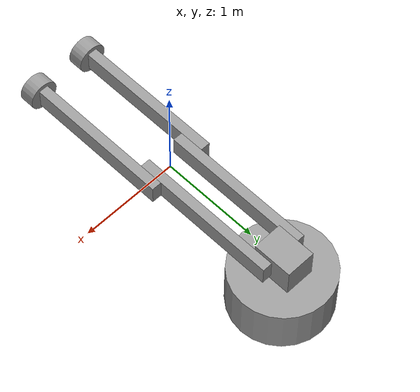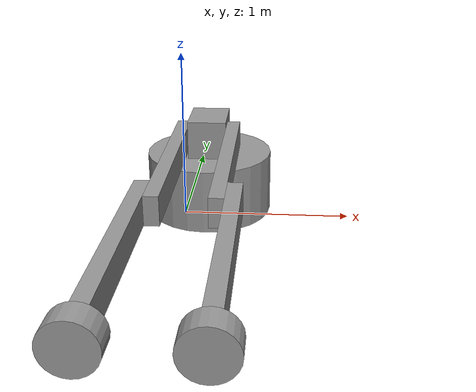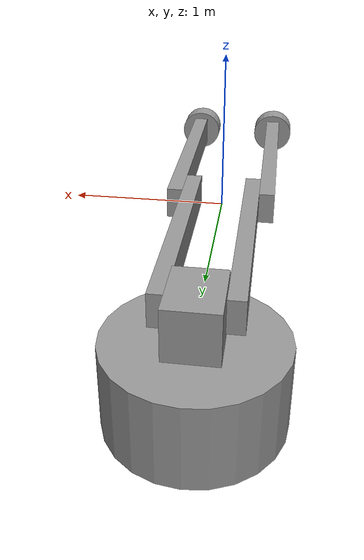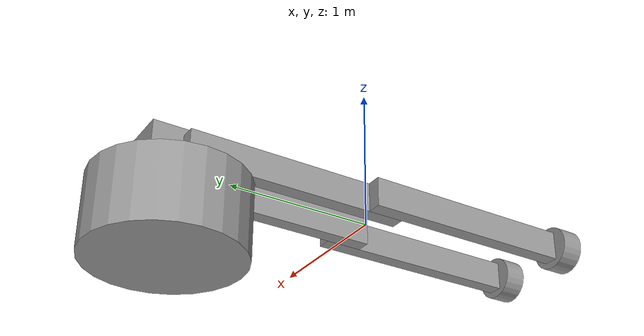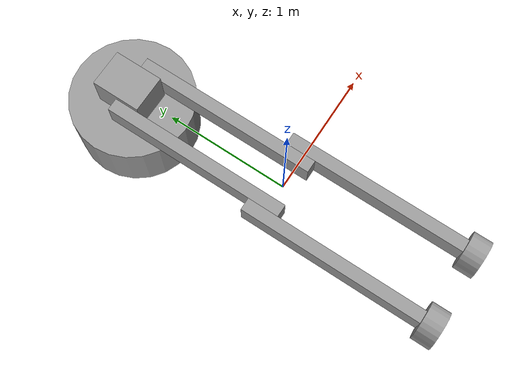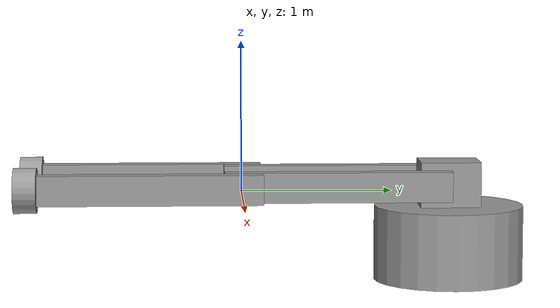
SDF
<?xml version='1.0'?>
<sdf version='1.6'>
  <model name='simple_arm_bot'>
    <link name='link_0'>
      <pose frame=''>0 1.3875 -0.35 0 -0 0</pose>
      <inertial>
        <mass>1</mass>
        <inertia>
          <ixx>0.145833</ixx>
          <ixy>0</ixy>
          <ixz>0</ixz>
          <iyy>0.145833</iyy>
          <iyz>0</iyz>
          <izz>0.125</izz>
        </inertia>
        <pose frame=''>0 0 0 0 -0 0</pose>
      </inertial>
      <gravity>1</gravity>
      <self_collide>0</self_collide>
      <kinematic>0</kinematic>
      <visual name='visual'>
        <pose frame=''>0 0 0 0 -0 0</pose>
        <geometry>
          <cylinder>
            <radius>0.5</radius>
            <length>0.5</length>
          </cylinder>
        </geometry>
        <material>
          <lighting>1</lighting>
          <script>
            <uri>file://media/materials/scripts/gazebo.material</uri>
            <name>Gazebo/Grey</name>
          </script>
          <ambient>0.3 0.3 0.3 1</ambient>
          <diffuse>0.7 0.7 0.7 1</diffuse>
          <specular>0.01 0.01 0.01 1</specular>
          <emissive>0 0 0 1</emissive>
          <shader type='vertex'>
            <normal_map>__default__</normal_map>
          </shader>
        </material>
        <transparency>0</transparency>
        <cast_shadows>1</cast_shadows>
      </visual>
      <collision name='collision'>
        <laser_retro>0</laser_retro>
        <max_contacts>10</max_contacts>
        <pose frame=''>0 0 0 0 -0 0</pose>
        <geometry>
          <cylinder>
            <radius>0.5</radius>
            <length>0.5</length>
          </cylinder>
        </geometry>
        <surface>
          <friction>
            <ode>
              <mu>1</mu>
              <mu2>1</mu2>
              <fdir1>0 0 0</fdir1>
              <slip1>0</slip1>
              <slip2>0</slip2>
            </ode>
            <torsional>
              <coefficient>1</coefficient>
              <patch_radius>0</patch_radius>
              <surface_radius>0</surface_radius>
              <use_patch_radius>1</use_patch_radius>
              <ode>
                <slip>0</slip>
              </ode>
            </torsional>
          </friction>
          <bounce>
            <restitution_coefficient>0</restitution_coefficient>
            <threshold>1e+06</threshold>
          </bounce>
          <contact>
            <collide_without_contact>0</collide_without_contact>
            <collide_without_contact_bitmask>1</collide_without_contact_bitmask>
            <collide_bitmask>1</collide_bitmask>
            <ode>
              <soft_cfm>0</soft_cfm>
              <soft_erp>0.2</soft_erp>
              <kp>1e+13</kp>
              <kd>1</kd>
              <max_vel>0.01</max_vel>
              <min_depth>0</min_depth>
            </ode>
            <bullet>
              <split_impulse>1</split_impulse>
              <split_impulse_penetration_threshold>-0.01</split_impulse_penetration_threshold>
              <soft_cfm>0</soft_cfm>
              <soft_erp>0.2</soft_erp>
              <kp>1e+13</kp>
              <kd>1</kd>
            </bullet>
          </contact>
        </surface>
      </collision>
    </link>
    <link name='link_1'>
      <pose frame=''>0 1.3875 0.05 0 -0 0</pose>
      <inertial>
        <mass>0.1</mass>
        <inertia>
          <ixx>0.166667</ixx>
          <ixy>0</ixy>
          <ixz>0</ixz>
          <iyy>0.166667</iyy>
          <iyz>0</iyz>
          <izz>0.166667</izz>
        </inertia>
        <pose frame=''>0 0 0 0 -0 0</pose>
      </inertial>
      <gravity>1</gravity>
      <self_collide>0</self_collide>
      <kinematic>0</kinematic>
      <visual name='visual'>
        <pose frame=''>0 0 0 0 -0 0</pose>
        <geometry>
          <box>
            <size>0.3 0.4 0.3</size>
          </box>
        </geometry>
        <material>
          <lighting>1</lighting>
          <script>
            <uri>file://media/materials/scripts/gazebo.material</uri>
            <name>Gazebo/Grey</name>
          </script>
          <ambient>0.3 0.3 0.3 1</ambient>
          <diffuse>0.7 0.7 0.7 1</diffuse>
          <specular>0.01 0.01 0.01 1</specular>
          <emissive>0 0 0 1</emissive>
          <shader type='vertex'>
            <normal_map>__default__</normal_map>
          </shader>
        </material>
        <transparency>0</transparency>
        <cast_shadows>1</cast_shadows>
      </visual>
      <collision name='collision'>
        <laser_retro>0</laser_retro>
        <max_contacts>10</max_contacts>
        <pose frame=''>0 0 0 0 -0 0</pose>
        <geometry>
          <box>
            <size>0.3 0.4 0.3</size>
          </box>
        </geometry>
        <surface>
          <friction>
            <ode>
              <mu>1</mu>
              <mu2>1</mu2>
              <fdir1>0 0 0</fdir1>
              <slip1>0</slip1>
              <slip2>0</slip2>
            </ode>
            <torsional>
              <coefficient>1</coefficient>
              <patch_radius>0</patch_radius>
              <surface_radius>0</surface_radius>
              <use_patch_radius>1</use_patch_radius>
              <ode>
                <slip>0</slip>
              </ode>
            </torsional>
          </friction>
          <bounce>
            <restitution_coefficient>0</restitution_coefficient>
            <threshold>1e+06</threshold>
          </bounce>
          <contact>
            <collide_without_contact>0</collide_without_contact>
            <collide_without_contact_bitmask>1</collide_without_contact_bitmask>
            <collide_bitmask>1</collide_bitmask>
            <ode>
              <soft_cfm>0</soft_cfm>
              <soft_erp>0.2</soft_erp>
              <kp>1e+13</kp>
              <kd>1</kd>
              <max_vel>0.01</max_vel>
              <min_depth>0</min_depth>
            </ode>
            <bullet>
              <split_impulse>1</split_impulse>
              <split_impulse_penetration_threshold>-0.01</split_impulse_penetration_threshold>
              <soft_cfm>0</soft_cfm>
              <soft_erp>0.2</soft_erp>
              <kp>1e+13</kp>
              <kd>1</kd>
            </bullet>
          </contact>
        </surface>
      </collision>
    </link>
    <link name='link_2'>
      <pose frame=''>0.2 0.6375 0.05 0 -0 0</pose>
      <inertial>
        <mass>0.1</mass>
        <inertia>
          <ixx>0.166667</ixx>
          <ixy>0</ixy>
          <ixz>0</ixz>
          <iyy>0.166667</iyy>
          <iyz>0</iyz>
          <izz>0.166667</izz>
        </inertia>
        <pose frame=''>0 0 0 0 -0 0</pose>
      </inertial>
      <gravity>1</gravity>
      <self_collide>0</self_collide>
      <kinematic>0</kinematic>
      <visual name='visual'>
        <pose frame=''>0 0 0 0 -0 0</pose>
        <geometry>
          <box>
            <size>0.1 1.5 0.2</size>
          </box>
        </geometry>
        <material>
          <lighting>1</lighting>
          <script>
            <uri>file://media/materials/scripts/gazebo.material</uri>
            <name>Gazebo/Grey</name>
          </script>
          <ambient>0.3 0.3 0.3 1</ambient>
          <diffuse>0.7 0.7 0.7 1</diffuse>
          <specular>0.01 0.01 0.01 1</specular>
          <emissive>0 0 0 1</emissive>
          <shader type='vertex'>
            <normal_map>__default__</normal_map>
          </shader>
        </material>
        <transparency>0</transparency>
        <cast_shadows>1</cast_shadows>
      </visual>
      <collision name='collision'>
        <laser_retro>0</laser_retro>
        <max_contacts>10</max_contacts>
        <pose frame=''>0 0 0 0 -0 0</pose>
        <geometry>
          <box>
            <size>0.1 1.5 0.2</size>
          </box>
        </geometry>
        <surface>
          <friction>
            <ode>
              <mu>1</mu>
              <mu2>1</mu2>
              <fdir1>0 0 0</fdir1>
              <slip1>0</slip1>
              <slip2>0</slip2>
            </ode>
            <torsional>
              <coefficient>1</coefficient>
              <patch_radius>0</patch_radius>
              <surface_radius>0</surface_radius>
              <use_patch_radius>1</use_patch_radius>
              <ode>
                <slip>0</slip>
              </ode>
            </torsional>
          </friction>
          <bounce>
            <restitution_coefficient>0</restitution_coefficient>
            <threshold>1e+06</threshold>
          </bounce>
          <contact>
            <collide_without_contact>0</collide_without_contact>
            <collide_without_contact_bitmask>1</collide_without_contact_bitmask>
            <collide_bitmask>1</collide_bitmask>
            <ode>
              <soft_cfm>0</soft_cfm>
              <soft_erp>0.2</soft_erp>
              <kp>1e+13</kp>
              <kd>1</kd>
              <max_vel>0.01</max_vel>
              <min_depth>0</min_depth>
            </ode>
            <bullet>
              <split_impulse>1</split_impulse>
              <split_impulse_penetration_threshold>-0.01</split_impulse_penetration_threshold>
              <soft_cfm>0</soft_cfm>
              <soft_erp>0.2</soft_erp>
              <kp>1e+13</kp>
              <kd>1</kd>
            </bullet>
          </contact>
        </surface>
      </collision>
    </link>
    <link name='link_3'>
      <pose frame=''>-0.2 0.6375 0.05 0 -0 0</pose>
      <inertial>
        <mass>0.1</mass>
        <inertia>
          <ixx>0.166667</ixx>
          <ixy>0</ixy>
          <ixz>0</ixz>
          <iyy>0.166667</iyy>
          <iyz>0</iyz>
          <izz>0.166667</izz>
        </inertia>
        <pose frame=''>0 0 0 0 -0 0</pose>
      </inertial>
      <gravity>1</gravity>
      <self_collide>0</self_collide>
      <kinematic>0</kinematic>
      <visual name='visual'>
        <pose frame=''>0 0 0 0 -0 0</pose>
        <geometry>
          <box>
            <size>0.1 1.5 0.2</size>
          </box>
        </geometry>
        <material>
          <lighting>1</lighting>
          <script>
            <uri>file://media/materials/scripts/gazebo.material</uri>
            <name>Gazebo/Grey</name>
          </script>
          <ambient>0.3 0.3 0.3 1</ambient>
          <diffuse>0.7 0.7 0.7 1</diffuse>
          <specular>0.01 0.01 0.01 1</specular>
          <emissive>0 0 0 1</emissive>
          <shader type='vertex'>
            <normal_map>__default__</normal_map>
          </shader>
        </material>
        <transparency>0</transparency>
        <cast_shadows>1</cast_shadows>
      </visual>
      <collision name='collision'>
        <laser_retro>0</laser_retro>
        <max_contacts>10</max_contacts>
        <pose frame=''>0 0 0 0 -0 0</pose>
        <geometry>
          <box>
            <size>0.1 1.5 0.2</size>
          </box>
        </geometry>
        <surface>
          <friction>
            <ode>
              <mu>1</mu>
              <mu2>1</mu2>
              <fdir1>0 0 0</fdir1>
              <slip1>0</slip1>
              <slip2>0</slip2>
            </ode>
            <torsional>
              <coefficient>1</coefficient>
              <patch_radius>0</patch_radius>
              <surface_radius>0</surface_radius>
              <use_patch_radius>1</use_patch_radius>
              <ode>
                <slip>0</slip>
              </ode>
            </torsional>
          </friction>
          <bounce>
            <restitution_coefficient>0</restitution_coefficient>
            <threshold>1e+06</threshold>
          </bounce>
          <contact>
            <collide_without_contact>0</collide_without_contact>
            <collide_without_contact_bitmask>1</collide_without_contact_bitmask>
            <collide_bitmask>1</collide_bitmask>
            <ode>
              <soft_cfm>0</soft_cfm>
              <soft_erp>0.2</soft_erp>
              <kp>1e+13</kp>
              <kd>1</kd>
              <max_vel>0.01</max_vel>
              <min_depth>0</min_depth>
            </ode>
            <bullet>
              <split_impulse>1</split_impulse>
              <split_impulse_penetration_threshold>-0.01</split_impulse_penetration_threshold>
              <soft_cfm>0</soft_cfm>
              <soft_erp>0.2</soft_erp>
              <kp>1e+13</kp>
              <kd>1</kd>
            </bullet>
          </contact>
        </surface>
      </collision>
    </link>
    <link name='link_4'>
      <pose frame=''>0.3 -0.6125 0.05 0 -0 0</pose>
      <inertial>
        <mass>0.1</mass>
        <inertia>
          <ixx>0.166667</ixx>
          <ixy>0</ixy>
          <ixz>0</ixz>
          <iyy>0.166667</iyy>
          <iyz>0</iyz>
          <izz>0.166667</izz>
        </inertia>
        <pose frame=''>0 0 0 0 -0 0</pose>
      </inertial>
      <gravity>1</gravity>
      <self_collide>0</self_collide>
      <kinematic>0</kinematic>
      <visual name='visual'>
        <pose frame=''>0 0 0 0 -0 0</pose>
        <geometry>
          <box>
            <size>0.1 1.5 0.2</size>
          </box>
        </geometry>
        <material>
          <lighting>1</lighting>
          <script>
            <uri>file://media/materials/scripts/gazebo.material</uri>
            <name>Gazebo/Grey</name>
          </script>
          <ambient>0.3 0.3 0.3 1</ambient>
          <diffuse>0.7 0.7 0.7 1</diffuse>
          <specular>0.01 0.01 0.01 1</specular>
          <emissive>0 0 0 1</emissive>
          <shader type='vertex'>
            <normal_map>__default__</normal_map>
          </shader>
        </material>
        <transparency>0</transparency>
        <cast_shadows>1</cast_shadows>
      </visual>
      <collision name='collision'>
        <laser_retro>0</laser_retro>
        <max_contacts>10</max_contacts>
        <pose frame=''>0 0 0 0 -0 0</pose>
        <geometry>
          <box>
            <size>0.1 1.5 0.2</size>
          </box>
        </geometry>
        <surface>
          <friction>
            <ode>
              <mu>1</mu>
              <mu2>1</mu2>
              <fdir1>0 0 0</fdir1>
              <slip1>0</slip1>
              <slip2>0</slip2>
            </ode>
            <torsional>
              <coefficient>1</coefficient>
              <patch_radius>0</patch_radius>
              <surface_radius>0</surface_radius>
              <use_patch_radius>1</use_patch_radius>
              <ode>
                <slip>0</slip>
              </ode>
            </torsional>
          </friction>
          <bounce>
            <restitution_coefficient>0</restitution_coefficient>
            <threshold>1e+06</threshold>
          </bounce>
          <contact>
            <collide_without_contact>0</collide_without_contact>
            <collide_without_contact_bitmask>1</collide_without_contact_bitmask>
            <collide_bitmask>1</collide_bitmask>
            <ode>
              <soft_cfm>0</soft_cfm>
              <soft_erp>0.2</soft_erp>
              <kp>1e+13</kp>
              <kd>1</kd>
              <max_vel>0.01</max_vel>
              <min_depth>0</min_depth>
            </ode>
            <bullet>
              <split_impulse>1</split_impulse>
              <split_impulse_penetration_threshold>-0.01</split_impulse_penetration_threshold>
              <soft_cfm>0</soft_cfm>
              <soft_erp>0.2</soft_erp>
              <kp>1e+13</kp>
              <kd>1</kd>
            </bullet>
          </contact>
        </surface>
      </collision>
    </link>
    <link name='link_6'>
      <pose frame=''>-0.3 -0.6125 0.05 0 -0 0</pose>
      <inertial>
        <mass>0.1</mass>
        <inertia>
          <ixx>0.166667</ixx>
          <ixy>0</ixy>
          <ixz>0</ixz>
          <iyy>0.166667</iyy>
          <iyz>0</iyz>
          <izz>0.166667</izz>
        </inertia>
        <pose frame=''>0 0 0 0 -0 0</pose>
      </inertial>
      <gravity>1</gravity>
      <self_collide>0</self_collide>
      <kinematic>0</kinematic>
      <visual name='visual'>
        <pose frame=''>0 0 0 0 -0 0</pose>
        <geometry>
          <box>
            <size>0.1 1.5 0.2</size>
          </box>
        </geometry>
        <material>
          <lighting>1</lighting>
          <script>
            <uri>file://media/materials/scripts/gazebo.material</uri>
            <name>Gazebo/Grey</name>
          </script>
          <ambient>0.3 0.3 0.3 1</ambient>
          <diffuse>0.7 0.7 0.7 1</diffuse>
          <specular>0.01 0.01 0.01 1</specular>
          <emissive>0 0 0 1</emissive>
          <shader type='vertex'>
            <normal_map>__default__</normal_map>
          </shader>
        </material>
        <transparency>0</transparency>
        <cast_shadows>1</cast_shadows>
      </visual>
      <collision name='collision'>
        <laser_retro>0</laser_retro>
        <max_contacts>10</max_contacts>
        <pose frame=''>0 0 0 0 -0 0</pose>
        <geometry>
          <box>
            <size>0.1 1.5 0.2</size>
          </box>
        </geometry>
        <surface>
          <friction>
            <ode>
              <mu>1</mu>
              <mu2>1</mu2>
              <fdir1>0 0 0</fdir1>
              <slip1>0</slip1>
              <slip2>0</slip2>
            </ode>
            <torsional>
              <coefficient>1</coefficient>
              <patch_radius>0</patch_radius>
              <surface_radius>0</surface_radius>
              <use_patch_radius>1</use_patch_radius>
              <ode>
                <slip>0</slip>
              </ode>
            </torsional>
          </friction>
          <bounce>
            <restitution_coefficient>0</restitution_coefficient>
            <threshold>1e+06</threshold>
          </bounce>
          <contact>
            <collide_without_contact>0</collide_without_contact>
            <collide_without_contact_bitmask>1</collide_without_contact_bitmask>
            <collide_bitmask>1</collide_bitmask>
            <ode>
              <soft_cfm>0</soft_cfm>
              <soft_erp>0.2</soft_erp>
              <kp>1e+13</kp>
              <kd>1</kd>
              <max_vel>0.01</max_vel>
              <min_depth>0</min_depth>
            </ode>
            <bullet>
              <split_impulse>1</split_impulse>
              <split_impulse_penetration_threshold>-0.01</split_impulse_penetration_threshold>
              <soft_cfm>0</soft_cfm>
              <soft_erp>0.2</soft_erp>
              <kp>1e+13</kp>
              <kd>1</kd>
            </bullet>
          </contact>
        </surface>
      </collision>
    </link>
    <link name='link_7'>
      <pose frame=''>0.3 -1.4125 0.05 1.5708 -0 0</pose>
      <inertial>
        <mass>0.1</mass>
        <inertia>
          <ixx>0.145833</ixx>
          <ixy>0</ixy>
          <ixz>0</ixz>
          <iyy>0.145833</iyy>
          <iyz>0</iyz>
          <izz>0.125</izz>
        </inertia>
        <pose frame=''>0 0 0 0 -0 0</pose>
      </inertial>
      <gravity>1</gravity>
      <self_collide>0</self_collide>
      <kinematic>0</kinematic>
      <visual name='visual'>
        <pose frame=''>0 0 0 0 -0 0</pose>
        <geometry>
          <cylinder>
            <radius>0.15</radius>
            <length>0.15</length>
          </cylinder>
        </geometry>
        <material>
          <lighting>1</lighting>
          <script>
            <uri>file://media/materials/scripts/gazebo.material</uri>
            <name>Gazebo/Grey</name>
          </script>
          <ambient>0.3 0.3 0.3 1</ambient>
          <diffuse>0.7 0.7 0.7 1</diffuse>
          <specular>0.01 0.01 0.01 1</specular>
          <emissive>0 0 0 1</emissive>
          <shader type='vertex'>
            <normal_map>__default__</normal_map>
          </shader>
        </material>
        <transparency>0</transparency>
        <cast_shadows>1</cast_shadows>
      </visual>
      <collision name='collision'>
        <laser_retro>0</laser_retro>
        <max_contacts>10</max_contacts>
        <pose frame=''>0 0 0 0 -0 0</pose>
        <geometry>
          <cylinder>
            <radius>0.15</radius>
            <length>0.15</length>
          </cylinder>
        </geometry>
        <surface>
          <friction>
            <ode>
              <mu>1</mu>
              <mu2>1</mu2>
              <fdir1>0 0 0</fdir1>
              <slip1>0</slip1>
              <slip2>0</slip2>
            </ode>
            <torsional>
              <coefficient>1</coefficient>
              <patch_radius>0</patch_radius>
              <surface_radius>0</surface_radius>
              <use_patch_radius>1</use_patch_radius>
              <ode>
                <slip>0</slip>
              </ode>
            </torsional>
          </friction>
          <bounce>
            <restitution_coefficient>0</restitution_coefficient>
            <threshold>1e+06</threshold>
          </bounce>
          <contact>
            <collide_without_contact>0</collide_without_contact>
            <collide_without_contact_bitmask>1</collide_without_contact_bitmask>
            <collide_bitmask>1</collide_bitmask>
            <ode>
              <soft_cfm>0</soft_cfm>
              <soft_erp>0.2</soft_erp>
              <kp>1e+13</kp>
              <kd>1</kd>
              <max_vel>0.01</max_vel>
              <min_depth>0</min_depth>
            </ode>
            <bullet>
              <split_impulse>1</split_impulse>
              <split_impulse_penetration_threshold>-0.01</split_impulse_penetration_threshold>
              <soft_cfm>0</soft_cfm>
              <soft_erp>0.2</soft_erp>
              <kp>1e+13</kp>
              <kd>1</kd>
            </bullet>
          </contact>
        </surface>
      </collision>
    </link>
    <link name='link_8'>
      <pose frame=''>-0.3 -1.4125 0.05 1.57 -0 0</pose>
      <inertial>
        <mass>0.1</mass>
        <inertia>
          <ixx>0.145833</ixx>
          <ixy>0</ixy>
          <ixz>0</ixz>
          <iyy>0.145833</iyy>
          <iyz>0</iyz>
          <izz>0.125</izz>
        </inertia>
        <pose frame=''>0 0 0 0 -0 0</pose>
      </inertial>
      <gravity>1</gravity>
      <self_collide>0</self_collide>
      <kinematic>0</kinematic>
      <visual name='visual'>
        <pose frame=''>0 0 0 0 -0 0</pose>
        <geometry>
          <cylinder>
            <radius>0.15</radius>
            <length>0.15</length>
          </cylinder>
        </geometry>
        <material>
          <lighting>1</lighting>
          <script>
            <uri>file://media/materials/scripts/gazebo.material</uri>
            <name>Gazebo/Grey</name>
          </script>
          <ambient>0.3 0.3 0.3 1</ambient>
          <diffuse>0.7 0.7 0.7 1</diffuse>
          <specular>0.01 0.01 0.01 1</specular>
          <emissive>0 0 0 1</emissive>
          <shader type='vertex'>
            <normal_map>__default__</normal_map>
          </shader>
        </material>
        <transparency>0</transparency>
        <cast_shadows>1</cast_shadows>
      </visual>
      <collision name='collision'>
        <laser_retro>0</laser_retro>
        <max_contacts>10</max_contacts>
        <pose frame=''>0 0 0 0 -0 0</pose>
        <geometry>
          <cylinder>
            <radius>0.15</radius>
            <length>0.15</length>
          </cylinder>
        </geometry>
        <surface>
          <friction>
            <ode>
              <mu>1</mu>
              <mu2>1</mu2>
              <fdir1>0 0 0</fdir1>
              <slip1>0</slip1>
              <slip2>0</slip2>
            </ode>
            <torsional>
              <coefficient>1</coefficient>
              <patch_radius>0</patch_radius>
              <surface_radius>0</surface_radius>
              <use_patch_radius>1</use_patch_radius>
              <ode>
                <slip>0</slip>
              </ode>
            </torsional>
          </friction>
          <bounce>
            <restitution_coefficient>0</restitution_coefficient>
            <threshold>1e+06</threshold>
          </bounce>
          <contact>
            <collide_without_contact>0</collide_without_contact>
            <collide_without_contact_bitmask>1</collide_without_contact_bitmask>
            <collide_bitmask>1</collide_bitmask>
            <ode>
              <soft_cfm>0</soft_cfm>
              <soft_erp>0.2</soft_erp>
              <kp>1e+13</kp>
              <kd>1</kd>
              <max_vel>0.01</max_vel>
              <min_depth>0</min_depth>
            </ode>
            <bullet>
              <split_impulse>1</split_impulse>
              <split_impulse_penetration_threshold>-0.01</split_impulse_penetration_threshold>
              <soft_cfm>0</soft_cfm>
              <soft_erp>0.2</soft_erp>
              <kp>1e+13</kp>
              <kd>1</kd>
            </bullet>
          </contact>
        </surface>
      </collision>
    </link>
    <joint name='link_0_JOINT_1' type='fixed'>
      <parent>link_0</parent>
      <child>link_1</child>
      <pose frame=''>0 0 0 0 -0 0</pose>
      <physics>
        <ode>
          <limit>
            <cfm>0</cfm>
            <erp>0.2</erp>
          </limit>
          <suspension>
            <cfm>0</cfm>
            <erp>0.2</erp>
          </suspension>
        </ode>
      </physics>
    </joint>
    <joint name='link_1_JOINT_2' type='revolute'>
      <parent>link_1</parent>
      <child>link_2</child>
      <pose frame=''>0 -0.75 0 0 -0 0</pose>
      <axis>
        <xyz>1 0 0</xyz>
        <use_parent_model_frame>0</use_parent_model_frame>
        <limit>
          <lower>-1.79769e+308</lower>
          <upper>1.79769e+308</upper>
          <effort>-1</effort>
          <velocity>-1</velocity>
        </limit>
        <dynamics>
          <spring_reference>0</spring_reference>
          <spring_stiffness>0</spring_stiffness>
          <damping>0</damping>
        </dynamics>
      </axis>
      <physics>
        <ode>
          <limit>
            <cfm>0</cfm>
            <erp>0.2</erp>
          </limit>
          <suspension>
            <cfm>0</cfm>
            <erp>0.2</erp>
          </suspension>
        </ode>
      </physics>
    </joint>
    <joint name='link_1_JOINT_4' type='revolute'>
      <parent>link_1</parent>
      <child>link_3</child>
      <pose frame=''>0 -0.75 0 0 -0 0</pose>
      <axis>
        <xyz>1 0 0</xyz>
        <use_parent_model_frame>0</use_parent_model_frame>
        <limit>
          <lower>-1.79769e+308</lower>
          <upper>1.79769e+308</upper>
          <effort>-1</effort>
          <velocity>-1</velocity>
        </limit>
        <dynamics>
          <spring_reference>0</spring_reference>
          <spring_stiffness>0</spring_stiffness>
          <damping>0</damping>
        </dynamics>
      </axis>
      <physics>
        <ode>
          <limit>
            <cfm>0</cfm>
            <erp>0.2</erp>
          </limit>
          <suspension>
            <cfm>0</cfm>
            <erp>0.2</erp>
          </suspension>
        </ode>
      </physics>
    </joint>
    <joint name='link_2_JOINT_7' type='revolute'>
      <parent>link_2</parent>
      <child>link_4</child>
      <pose frame=''>0 -0.75 0 0 -0 0</pose>
      <axis>
        <xyz>1 0 0</xyz>
        <use_parent_model_frame>0</use_parent_model_frame>
        <limit>
          <lower>-1.79769e+308</lower>
          <upper>1.79769e+308</upper>
          <effort>-1</effort>
          <velocity>-1</velocity>
        </limit>
        <dynamics>
          <spring_reference>0</spring_reference>
          <spring_stiffness>0</spring_stiffness>
          <damping>0</damping>
        </dynamics>
      </axis>
      <physics>
        <ode>
          <limit>
            <cfm>0</cfm>
            <erp>0.2</erp>
          </limit>
          <suspension>
            <cfm>0</cfm>
            <erp>0.2</erp>
          </suspension>
        </ode>
      </physics>
    </joint>
    <joint name='link_3_JOINT_8' type='revolute'>
      <parent>link_3</parent>
      <child>link_6</child>
      <pose frame=''>0 -0.75 0 0 -0 0</pose>
      <axis>
        <xyz>1 0 0</xyz>
        <use_parent_model_frame>0</use_parent_model_frame>
        <limit>
          <lower>-1.79769e+308</lower>
          <upper>1.79769e+308</upper>
          <effort>-1</effort>
          <velocity>-1</velocity>
        </limit>
        <dynamics>
          <spring_reference>0</spring_reference>
          <spring_stiffness>0</spring_stiffness>
          <damping>0</damping>
        </dynamics>
      </axis>
      <physics>
        <ode>
          <limit>
            <cfm>0</cfm>
            <erp>0.2</erp>
          </limit>
          <suspension>
            <cfm>0</cfm>
            <erp>0.2</erp>
          </suspension>
        </ode>
      </physics>
    </joint>
    <joint name='link_4_JOINT_9' type='revolute'>
      <parent>link_4</parent>
      <child>link_7</child>
      <pose frame=''>0 0 0 0 -0 0</pose>
      <axis>
        <xyz>0 0 1</xyz>
        <use_parent_model_frame>0</use_parent_model_frame>
        <limit>
          <lower>-1.79769e+308</lower>
          <upper>1.79769e+308</upper>
          <effort>-1</effort>
          <velocity>-1</velocity>
        </limit>
        <dynamics>
          <spring_reference>0</spring_reference>
          <spring_stiffness>0</spring_stiffness>
          <damping>0</damping>
        </dynamics>
      </axis>
      <physics>
        <ode>
          <limit>
            <cfm>0</cfm>
            <erp>0.2</erp>
          </limit>
          <suspension>
            <cfm>0</cfm>
            <erp>0.2</erp>
          </suspension>
        </ode>
      </physics>
    </joint>
    <joint name='link_6_JOINT_10' type='revolute'>
      <parent>link_6</parent>
      <child>link_8</child>
      <pose frame=''>0 0 0 0 -0 0</pose>
      <axis>
        <xyz>0 1 0</xyz>
        <use_parent_model_frame>0</use_parent_model_frame>
        <limit>
          <lower>-1.79769e+308</lower>
          <upper>1.79769e+308</upper>
          <effort>-1</effort>
          <velocity>-1</velocity>
        </limit>
        <dynamics>
          <spring_reference>0</spring_reference>
          <spring_stiffness>0</spring_stiffness>
          <damping>0</damping>
        </dynamics>
      </axis>
      <physics>
        <ode>
          <limit>
            <cfm>0</cfm>
            <erp>0.2</erp>
          </limit>
          <suspension>
            <cfm>0</cfm>
            <erp>0.2</erp>
          </suspension>
        </ode>
      </physics>
    </joint>
    <static>0</static>
    <allow_auto_disable>1</allow_auto_disable>
  </model>
</sdf>
